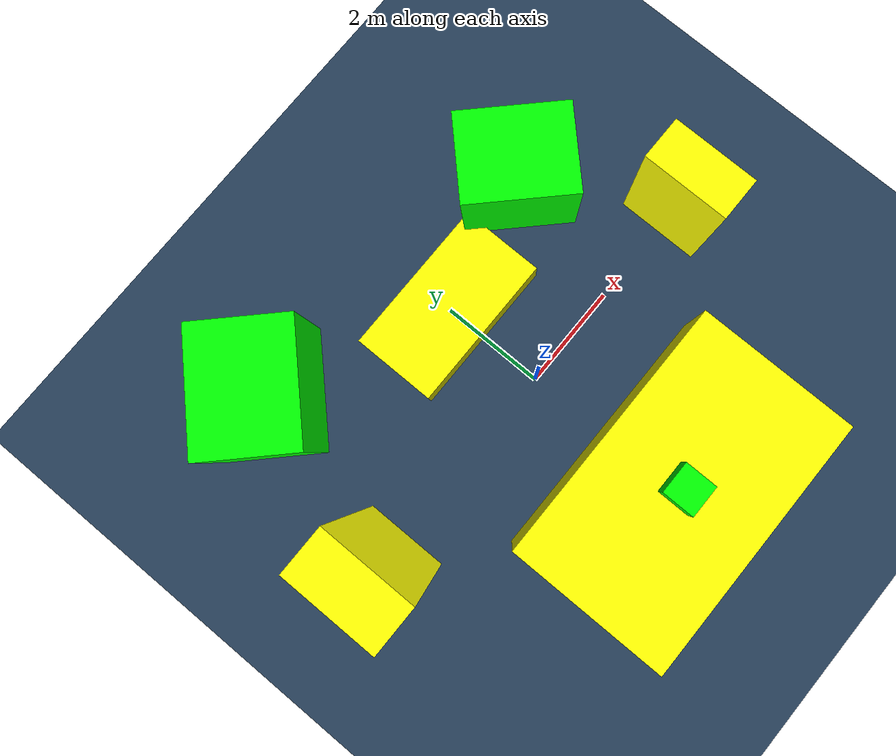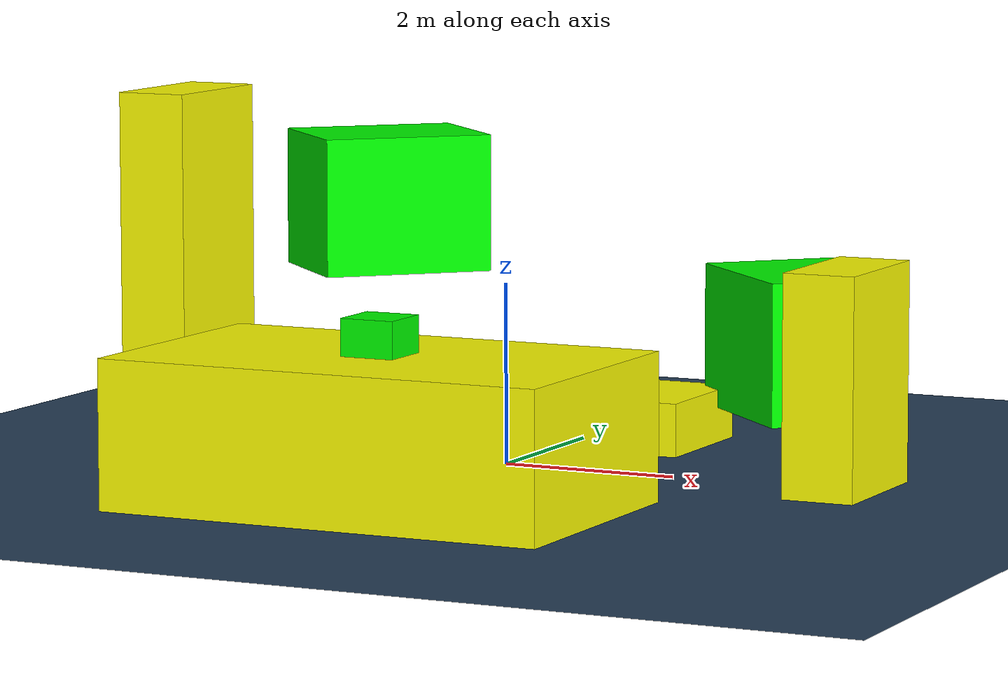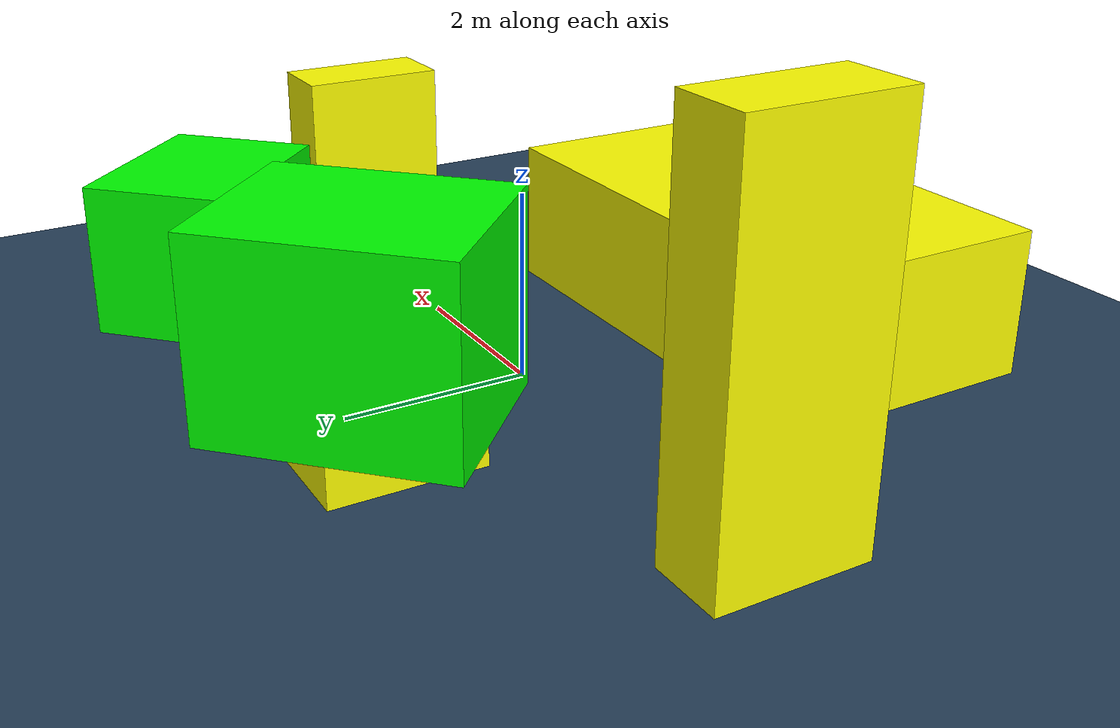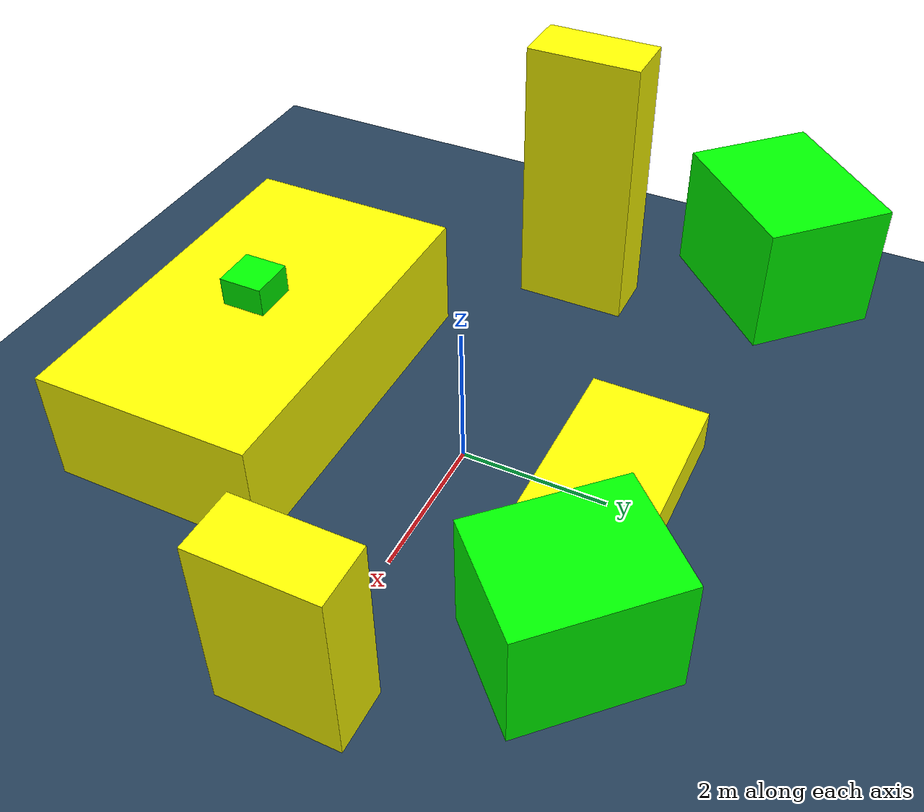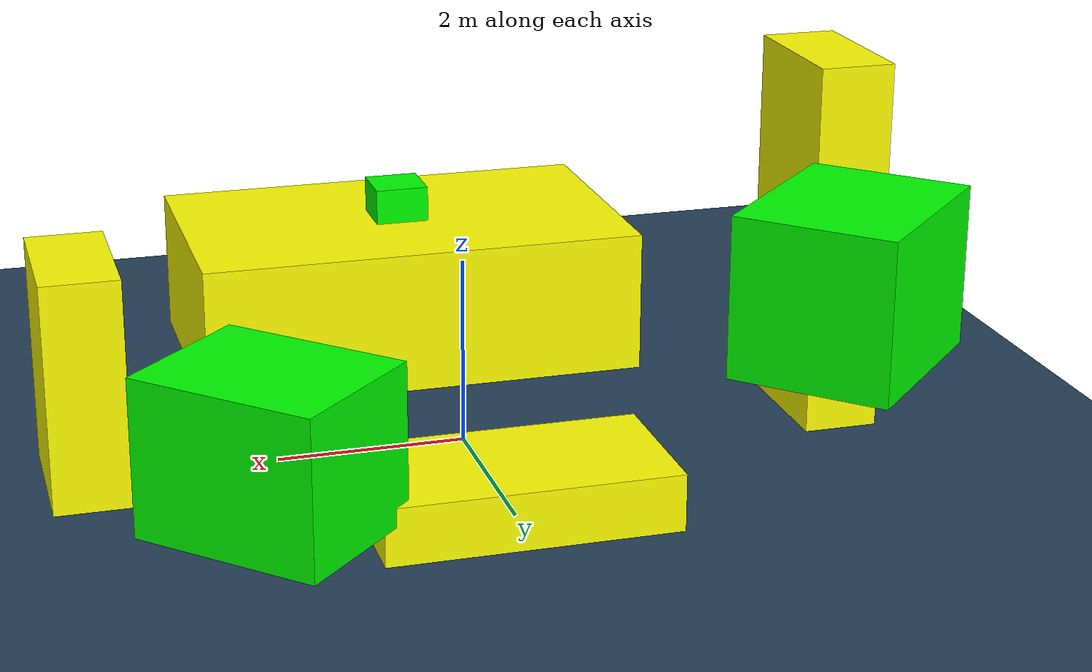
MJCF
<!-- A mock living room -->

<mujoco>

  <!--Texture for the floor-->
  <asset>
    <texture name="grid" type="2d" builtin="checker" rgb1=".1 .2 .3"
      rgb2=".2 .3 .4" width="300" height="300" mark="edge" markrgb=".2 .3 .4" />
    <material name="grid" texture="grid" texrepeat="8 8" reflectance="0.2" rgba="1 1 1 1" />
  </asset>

  <worldbody>
    <!--Set
    up lighting for better rendering-->
    <light name="top" pos="0 0 5" />

    <!--Set
    up the floor-->
    <geom name="ground" type="plane" pos="0 0 -0.01" size="10 10 .01" material="grid"
      friction="0.0001 0.005 0.0001" solimp=".99 .99 .01" solref=".001 1" />

    <!--Set
    up the real furnitures that should not move in the simulation-->
    <body>
      <geom name="Coffee_Table" type="box" pos="0.0 2.0 0.3" size="1.5 .8 .3" euler="0 0 0"
        rgba="1 1 0 1" solimp=".99 .99 .01" solref=".001 1" />
      <geom name="Spacer" type="box" pos="0.0 2 .3" size="1.9 1.2 .3" euler="0 0 0"
        friction="0.0001 0.005 0.0001" rgba="1 1 0 0" solimp=".99 .99 .01" solref=".001 1" />
    </body>
    <body>
      <geom name="Dining_Table" type="box" pos="0.0 -3.0 .8" size="2.5 1.5 .8"
        euler="0 0 0" friction="0.0001 0.005 0.0001" rgba="1 1 0 1" solimp=".99 .99 .01"
        solref=".001 1" />
    </body>
    <body>
      <geom name="Tall_Bookcase" type="box" pos="-4.0 0.0 2.0" size=".8 .4 2.0"
        euler="0 0 90" friction="0.0001 0.005 0.0001" rgba="1 1 0 1" solimp=".99 .99 .01"
        solref=".001 1" />
    </body>
    <body>
      <geom name="Short_Bookcase" type="box" pos="4.0 0.0 1.2" size=".8 .4 1.2"
        euler="0 0 -90" friction="0.0001 0.005 0.0001" rgba="1 1 0 1" solimp=".99 .99 .01"
        solref=".001 1" />
    </body>

    <!--Set
    up the virtual objects that can move in the simulation-->
    <body>
      <freejoint />
      <geom name="Plush_Armchair" type="box" pos="-3.0 3.0 2.5" size="1.0 .8 .8"
        euler="0 0 45.0" friction="0.0001 0.005 1" rgba="0 1 0 1" solimp=".99 .99 .01"
        solref=".001 1" />
    </body>
    <body>
      <freejoint />
      <geom name="Elegant_Armchair" type="box" pos="2.5 2.5 1.2" size="1.0 .8 .8"
        euler="0 0 -45.0" friction="0.0001 0.005 1" rgba="0 1 0 1" solimp=".99 .99 .01"
        solref=".001 1" />
    </body>
    <body>
      <freejoint />
      <geom name="Table_Lamp" type="box" pos="0.0 -3.0 1.4" size=".3 .3 .6" euler="0 0 0"
        friction="0.0001 0.005 1" rgba="0 1 0 1" solimp=".99 .99 .01" solref=".001 1" />
    </body>
  </worldbody>
</mujoco>
